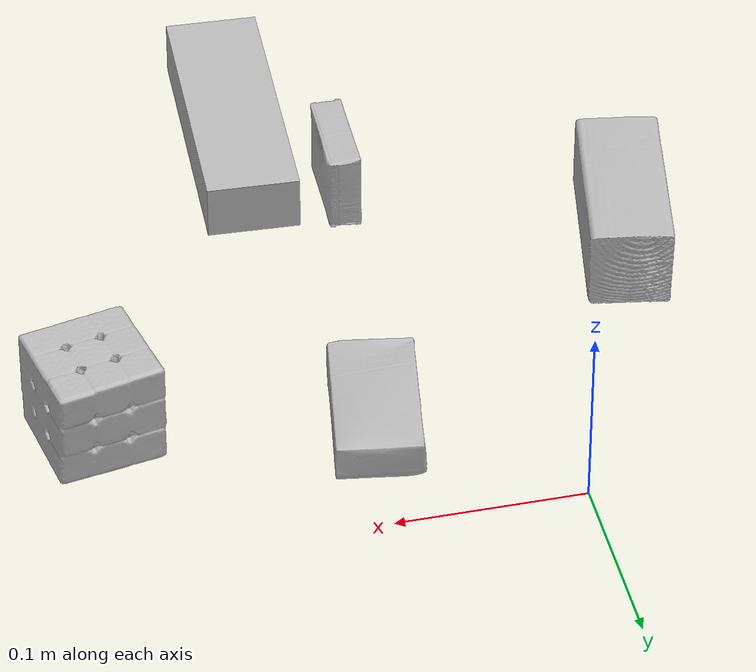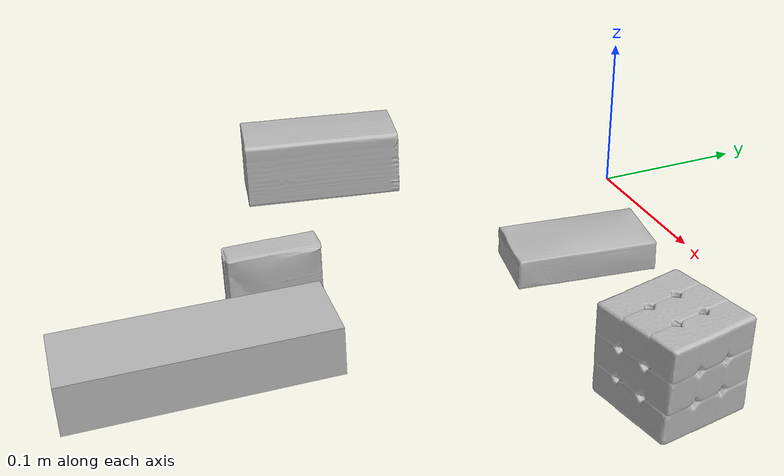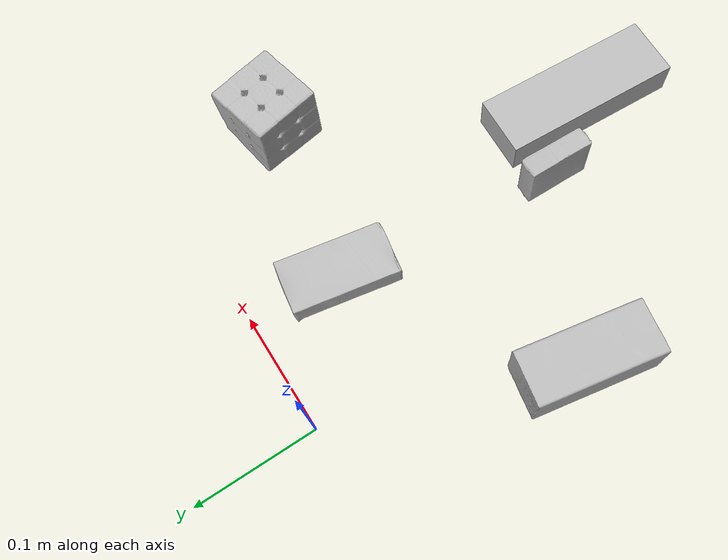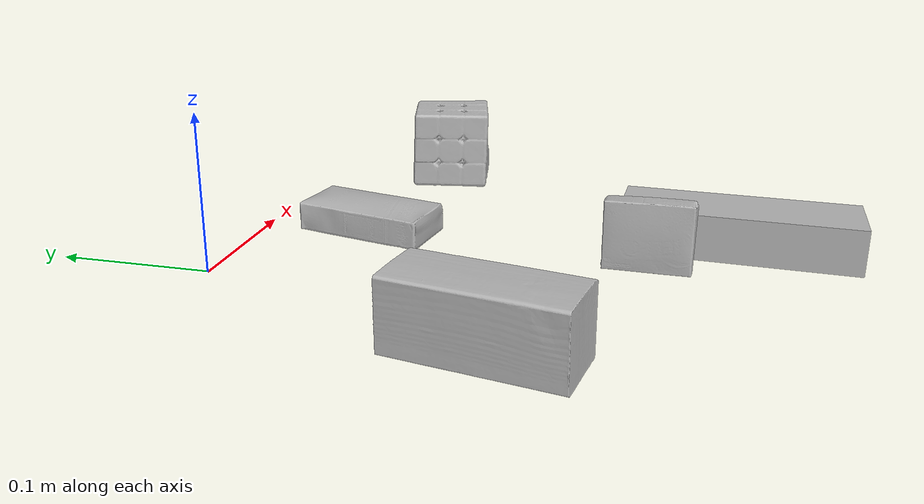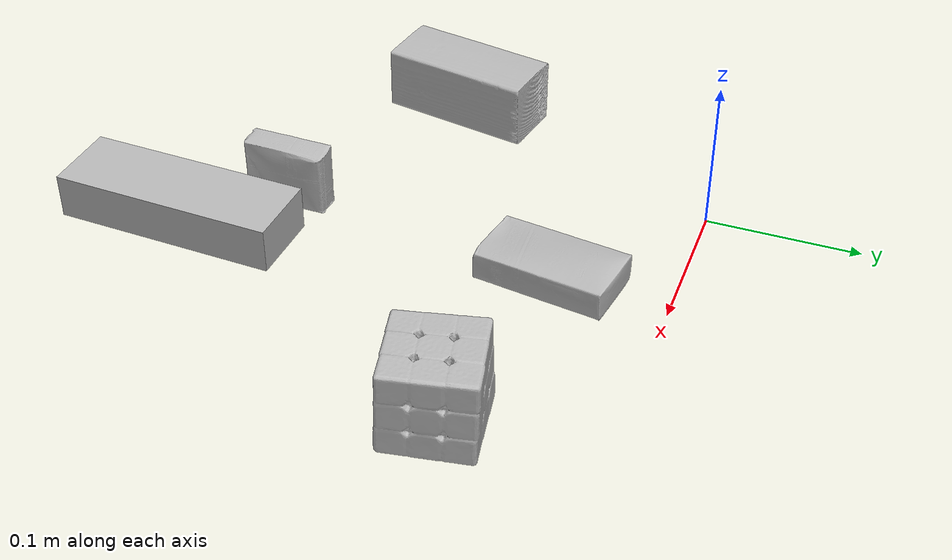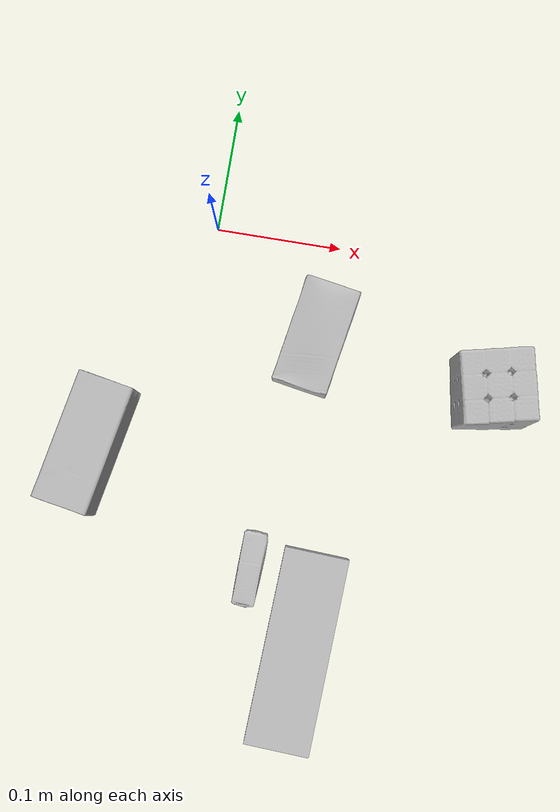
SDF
<sdf version="1.4">
  <world name="default">
    <light name="light1" type="point">
      <pose>0 0 1 0 0 0</pose>
      <diffuse>3 3 3 1</diffuse>
      <specular>3 3 3 1</specular>
    </light>
    <light name="light2" type="point">
      <pose>0 0.5 2 0 0 0</pose>
      <diffuse>1 1 1 1</diffuse>
      <specular>1 1 1 1</specular>
    </light>
    <light name="light3" type="point">
      <pose>0 0.5 2 0 0 0</pose>
      <diffuse>3 3 3 1</diffuse>
      <specular>3 3 3 1</specular>
    </light>
    <scene>
      <ambient>0.7 0.7 0.7</ambient>
    </scene>
    <model name="box1">
      <link name="link_box1">
        <collision name="default">
          <geometry>
            <mesh>
              <uri>model://wood_block/collision_meshes/collision.obj</uri>
              <scale>0.5 0.5 0.5</scale>
            </mesh>
          </geometry>
          <surface>
            <friction>
              <ode>
                <mu>0.5</mu>
                <mu2>0.5</mu2>
              </ode>
            </friction>
          <contact>
        <ode>
            <max_vel>0</max_vel>
            <min_depth>0.0001</min_depth>
            <kp>1e8</kp>
        </ode>
    </contact></surface>
        </collision>
        <visual name="default">
          <geometry>
            <mesh>
              <uri>model://wood_block/visual_meshes/visual.dae</uri>
              <scale>0.5 0.5 0.5</scale>
            </mesh>
          </geometry>
        </visual>
        <inertial>
          <mass>0.21249504387378693</mass>
          <pose>-2.906657528001233e-06 -0.00028540470520965755 0.00013204290007706732 -0.05220867383734612 -0.005192696375656893 -0.006861378651330705</pose>
          <inertia>
            <ixx>7.108762e-05</ixx>
            <iyy>0.00022456584</iyy>
            <izz>0.00022372584</izz>
            <ixy>0</ixy>
            <ixz>0</ixz>
            <iyz>0</iyz>
          </inertia>
        </inertial>
      </link>
      <pose>-0.06922563910484314 -0.18871371448040009 0.022629259154200554 -0.00520862486880958 0.0057187418120743195 1.3900984473285947</pose>
    </model>
    <model name="box2">
      <link name="link_box2">
        <collision name="default">
          <geometry>
            <mesh>
              <uri>model://sugar_box/collision_meshes/collision.obj</uri>
              <scale>0.5 0.5 0.5</scale>
            </mesh>
          </geometry>
          <surface>
            <friction>
              <ode>
                <mu>0.5</mu>
                <mu2>0.5</mu2>
              </ode>
            </friction>
          <contact>
        <ode>
            <max_vel>0</max_vel>
            <min_depth>0.0001</min_depth>
            <kp>1e8</kp>
        </ode>
    </contact></surface>
        </collision>
        <visual name="default">
          <geometry>
            <mesh>
              <uri>model://sugar_box/visual_meshes/visual.dae</uri>
              <scale>0.5 0.5 0.5</scale>
            </mesh>
          </geometry>
        </visual>
        <inertial>
          <mass>0.11089310050010681</mass>
          <pose>0.0005171863595023751 1.924554817378521e-05 -0.00018182402709499002 -0.0004046262999979174 0.001050663638672674 0.002615379254561693</pose>
          <inertia>
            <ixx>2.3098954e-05</ixx>
            <iyy>7.4660566e-05</iyy>
            <izz>8.9377616e-05</izz>
            <ixy>0</ixy>
            <ixz>0</ixz>
            <iyz>0</iyz>
          </inertia>
        </inertial>
      </link>
      <pose>0.09216169267892838 -0.07553719729185104 0.011399306356906891 0.0007752690164330195 -0.02343256338073211 1.3989437012969794</pose>
    </model>
    <model name="box3">
      <link name="link_box3">
        <collision name="default">
          <geometry>
            <mesh>
              <uri>model://jenga/collision_meshes/collision.obj</uri>
              <scale>1.0 1.0 1.0</scale>
            </mesh>
          </geometry>
          <surface>
            <friction>
              <ode>
                <mu>0.5</mu>
                <mu2>0.5</mu2>
              </ode>
            </friction>
          <contact>
        <ode>
            <max_vel>0</max_vel>
            <min_depth>0.0001</min_depth>
            <kp>1e8</kp>
        </ode>
    </contact></surface>
        </collision>
        <visual name="default">
          <geometry>
            <mesh>
              <uri>model://jenga/visual_meshes/visual.dae</uri>
              <scale>1.0 1.0 1.0</scale>
            </mesh>
          </geometry>
        </visual>
        <inertial>
          <mass>0.163609579205513</mass>
          <pose>-2.502855807051674e-07 -0.0001025000965455547 -4.0923401684267446e-05 0.0 -7.34215461761844e-07 0.0</pose>
          <inertia>
            <ixx>4.527474e-05</ixx>
            <iyy>0.00030678045</iyy>
            <izz>0.0003275142</izz>
            <ixy>0</ixy>
            <ixz>0</ixz>
            <iyz>0</iyz>
          </inertia>
        </inertial>
      </link>
      <pose>0.11638655513525009 -0.3176523447036743 0.014999997802078724 -1.0708010003150386e-08 8.876461375383167e-09 1.5232327847919427</pose>
    </model>
    <model name="box4">
      <link name="link_box4">
        <collision name="default">
          <geometry>
            <mesh>
              <uri>model://rubiks_cube/collision_meshes/collision.obj</uri>
              <scale>1.0 1.0 1.0</scale>
            </mesh>
          </geometry>
          <surface>
            <friction>
              <ode>
                <mu>0.5</mu>
                <mu2>0.5</mu2>
              </ode>
            </friction>
          <contact>
        <ode>
            <max_vel>0</max_vel>
            <min_depth>0.0001</min_depth>
            <kp>1e8</kp>
        </ode>
    </contact></surface>
        </collision>
        <visual name="default">
          <geometry>
            <mesh>
              <uri>model://rubiks_cube/visual_meshes/visual.dae</uri>
              <scale>1.0 1.0 1.0</scale>
            </mesh>
          </geometry>
        </visual>
        <inertial>
          <mass>0.25540637969970703</mass>
          <pose>2.6721041649580002e-05 5.2569666877388954e-05 -7.264316082000732e-06 -0.054671713185757496 -0.09814043055608018 -0.034455401135126476</pose>
          <inertia>
            <ixx>0.00014112917</ixx>
            <iyy>0.000140471</iyy>
            <izz>0.00014229867</izz>
            <ixy>0</ixy>
            <ixz>0</ixz>
            <iyz>0</iyz>
          </inertia>
        </inertial>
      </link>
      <pose>0.2331809252500534 -0.09701193869113922 0.028679007664322853 9.795181370454241e-09 5.141663427888083e-08 -2.9343296921107056</pose>
    </model>
    <model name="box5">
      <link name="link_box5">
        <collision name="default">
          <geometry>
            <mesh>
              <uri>model://pudding_box/collision_meshes/collision.obj</uri>
              <scale>0.5 0.5 0.5</scale>
            </mesh>
          </geometry>
          <surface>
            <friction>
              <ode>
                <mu>0.5</mu>
                <mu2>0.5</mu2>
              </ode>
            </friction>
          <contact>
        <ode>
            <max_vel>0</max_vel>
            <min_depth>0.0001</min_depth>
            <kp>1e8</kp>
        </ode>
    </contact></surface>
        </collision>
        <visual name="default">
          <geometry>
            <mesh>
              <uri>model://pudding_box/visual_meshes/visual.dae</uri>
              <scale>0.5 0.5 0.5</scale>
            </mesh>
          </geometry>
        </visual>
        <inertial>
          <mass>0.04848850890994072</mass>
          <pose>0.00024474109522998333 0.000403394311433658 -0.0002594413817860186 0.0052131017882315455 -0.0066037973363940366 0.020079830752013892</pose>
          <inertia>
            <ixx>1.370344e-05</ixx>
            <iyy>9.219772e-06</iyy>
            <izz>2.023671e-05</izz>
            <ixy>0</ixy>
            <ixz>0</ixz>
            <iyz>0</iyz>
          </inertia>
        </inertial>
      </link>
      <pose>0.070746511220932 -0.2620898485183716 0.022288188338279724 -0.020273334850398256 -1.5480765450312246 -0.01248787189178648</pose>
    </model>
  <physics type="ode">
      <max_contacts>50</max_contacts>
      <ode>
        <solver>
          <type>quick</type>
          <iters>75</iters>
        </solver>
        <constraints>
          <contact_max_correcting_vel>0</contact_max_correcting_vel>
          <contact_surface_layer>0</contact_surface_layer>
        </constraints>
      </ode>
    </physics></world>
</sdf>
